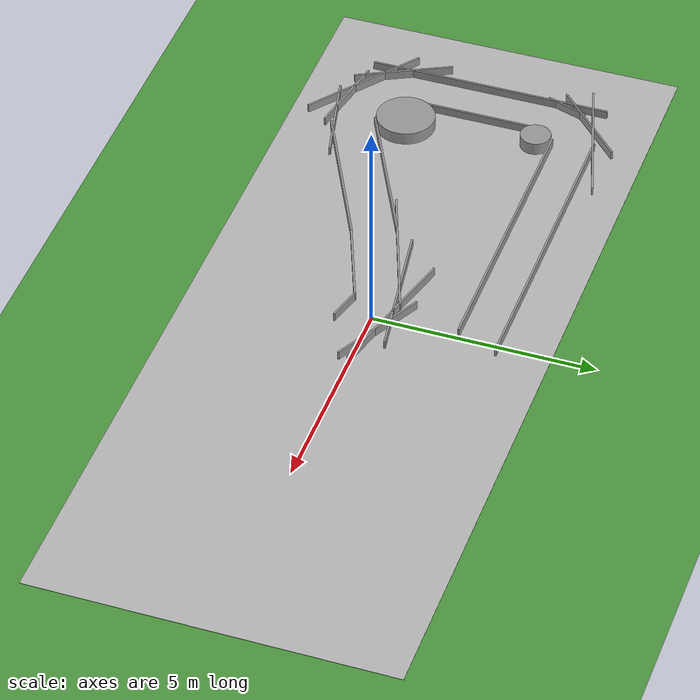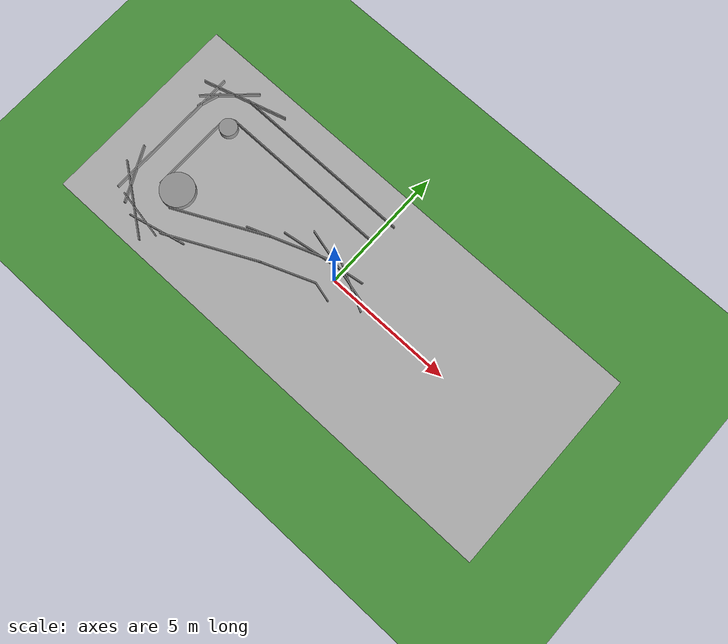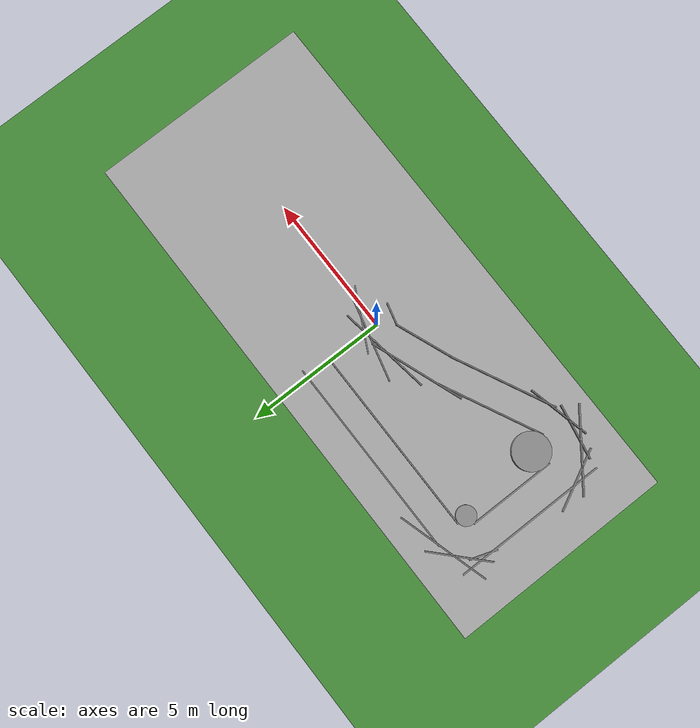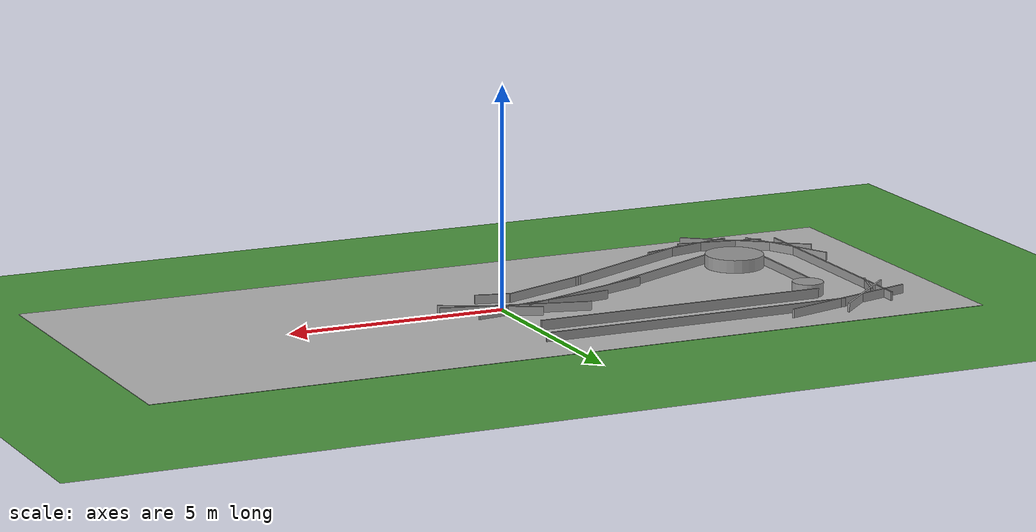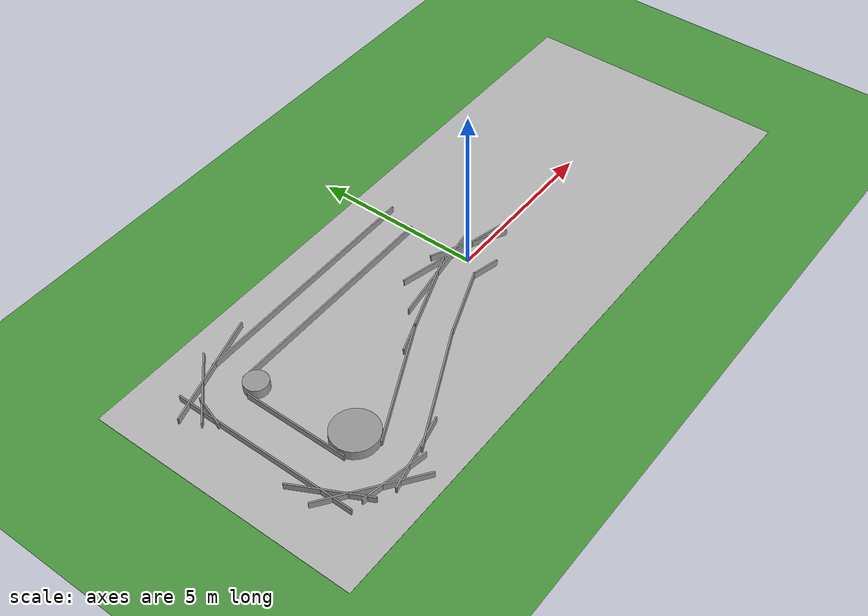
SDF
<sdf version="1.5">
 <world name="default">
  <model name="ground_grass">
   <static>1</static>
   <link name="ground_grass">
    <collision name="collision">
     <geometry><plane><normal>0 0 1</normal><size>50 50</size></plane></geometry>
     <surface><friction><ode><mu>100</mu><mu2>50</mu2></ode></friction></surface>
    </collision>
    <visual name="visual_ground">
     <cast_shadows>0</cast_shadows>
     <pose>0 0 0.005 0 -0 0</pose>
     <geometry><plane><normal>0 0 1</normal><size>50 50</size></plane></geometry>
     <material>
      <script>
       <uri>model://ground_grass/materials/scripts</uri>
       <uri>model://ground_grass/materials/textures</uri>
       <name>Floor/Grass</name>
      </script>
     </material>
    </visual>
    <velocity_decay><linear>0</linear><angular>0</angular></velocity_decay>
   </link>
  </model>
  <model name="ucsd_track_v1">
   <static>1</static>
   <link name="link_track">
    <collision name="collision">
     <geometry><plane><normal>0 0 1</normal><size>19.431 8.0264</size></plane></geometry>
     <surface><friction><ode><mu>100</mu><mu2>50</mu2></ode></friction></surface>
    </collision>
    <visual name="visual_ground">
     <cast_shadows>0</cast_shadows>
     <pose>0 0 0.005 0 -0 0</pose>
     <geometry><plane><normal>0 0 1</normal><size>19.431 8.0264</size></plane></geometry>
     <material>
      <script>
       <uri>model://ucsd_track_v1/materials/scripts</uri>
       <uri>model://ucsd_track_v1/materials/textures</uri>
       <name>Floor/Image</name>
      </script>
     </material>
    </visual>
    <velocity_decay><linear>0</linear><angular>0</angular></velocity_decay>
   </link>
   <pose>0 0 0.001 0 -0 0</pose>
  </model>
  <model name="grey_wall_track">
   <link name="link">
    <pose>0 0 1.4 0 -0 0</pose>
    <inertial>
     <inertia><ixx>nan</ixx><ixy>0</ixy><ixz>0</ixz><iyy>nan</iyy><iyz>0</iyz><izz>nan</izz></inertia>
     <mass>0</mass>
    </inertial>
    <visual name="visual">
     <cast_shadows>0</cast_shadows>
     <geometry><box><size>6.7262 0.043266 0.226147</size></box></geometry>
     <material>
      <script>
       <uri>model://grey_wall/materials/scripts</uri>
       <uri>model://grey_wall/materials/textures</uri>
       <name>vrc/grey_wall</name>
      </script>
      <ambient>1 1 1 1</ambient>
      <diffuse>1 1 1 1</diffuse>
      <specular>0 0 0 1</specular>
      <emissive>0 0 0 1</emissive>
     </material>
    </visual>
    <collision name="collision">
     <geometry><box><size>6.7262 0.043266 0.226147</size></box></geometry>
     <surface>
      <friction>
       <ode><mu>1</mu><mu2>1</mu2><fdir1>0 0 0</fdir1><slip1>0</slip1><slip2>0</slip2></ode>
       <torsional>
        <coefficient>1</coefficient>
        <patch_radius>0</patch_radius>
        <surface_radius>0</surface_radius>
        <use_patch_radius>1</use_patch_radius>
        <ode><slip>0</slip></ode>
       </torsional>
      </friction>
      <bounce><restitution_coefficient>0</restitution_coefficient><threshold>1e+06</threshold></bounce>
      <contact>
       <collide_without_contact>0</collide_without_contact>
       <collide_without_contact_bitmask>1</collide_without_contact_bitmask>
       <collide_bitmask>1</collide_bitmask>
       <ode>
        <soft_cfm>0</soft_cfm>
        <soft_erp>0.2</soft_erp>
        <kp>1e+13</kp>
        <kd>1</kd>
        <max_vel>0.01</max_vel>
        <min_depth>0</min_depth>
       </ode>
       <bullet>
        <split_impulse>1</split_impulse>
        <split_impulse_penetration_threshold>-0.01</split_impulse_penetration_threshold>
        <soft_cfm>0</soft_cfm>
        <soft_erp>0.2</soft_erp>
        <kp>1e+13</kp>
        <kd>1</kd>
       </bullet>
      </contact>
     </surface>
    </collision>
   </link>
   <static>1</static>
   <pose>-3.38545 1.93605 -1.28591 0 -0 0</pose>
  </model>
  <model name="grey_wall_small_6">
   <link name="link">
    <pose>0 0 1.4 0 -0 0.009516</pose>
    <inertial>
     <inertia><ixx>nan</ixx><ixy>0</ixy><ixz>0</ixz><iyy>nan</iyy><iyz>0</iyz><izz>nan</izz></inertia>
     <mass>0</mass>
    </inertial>
    <visual name="visual">
     <cast_shadows>0</cast_shadows>
     <geometry><box><size>3.14897 0.043266 0.226147</size></box></geometry>
     <material>
      <script>
       <uri>model://grey_wall/materials/scripts</uri>
       <uri>model://grey_wall/materials/textures</uri>
       <name>vrc/grey_wall</name>
      </script>
      <ambient>1 1 1 1</ambient>
      <diffuse>1 1 1 1</diffuse>
      <specular>0 0 0 1</specular>
      <emissive>0 0 0 1</emissive>
     </material>
    </visual>
    <collision name="collision">
     <geometry><box><size>3.14897 0.043266 0.226147</size></box></geometry>
     <surface>
      <friction>
       <ode><mu>1</mu><mu2>1</mu2><fdir1>0 0 0</fdir1><slip1>0</slip1><slip2>0</slip2></ode>
       <torsional>
        <coefficient>1</coefficient>
        <patch_radius>0</patch_radius>
        <surface_radius>0</surface_radius>
        <use_patch_radius>1</use_patch_radius>
        <ode><slip>0</slip></ode>
       </torsional>
      </friction>
      <bounce><restitution_coefficient>0</restitution_coefficient><threshold>1e+06</threshold></bounce>
      <contact>
       <collide_without_contact>0</collide_without_contact>
       <collide_without_contact_bitmask>1</collide_without_contact_bitmask>
       <collide_bitmask>1</collide_bitmask>
       <ode>
        <soft_cfm>0</soft_cfm>
        <soft_erp>0.2</soft_erp>
        <kp>1e+13</kp>
        <kd>1</kd>
        <max_vel>0.01</max_vel>
        <min_depth>0</min_depth>
       </ode>
       <bullet>
        <split_impulse>1</split_impulse>
        <split_impulse_penetration_threshold>-0.01</split_impulse_penetration_threshold>
        <soft_cfm>0</soft_cfm>
        <soft_erp>0.2</soft_erp>
        <kp>1e+13</kp>
        <kd>1</kd>
       </bullet>
      </contact>
     </surface>
    </collision>
   </link>
   <static>1</static>
   <pose>-7.05702 -0.045658 -1.30963 0 -0 1.55954</pose>
  </model>
  <model name="unit_cylinder2_1">
   <link name="link">
    <inertial>
     <mass>0.30371</mass>
     <inertia>
      <ixx>0.0213162</ixx>
      <ixy>0</ixy>
      <ixz>0</ixz>
      <iyy>0.0213162</iyy>
      <iyz>0</iyz>
      <izz>0.0379638</izz>
     </inertia>
    </inertial>
    <visual name="visual">
     <geometry><cylinder><radius>0.348419</radius><length>0.303709</length></cylinder></geometry>
     <material>
      <script><name>Gazebo/Grey</name><uri>file://media/materials/scripts/gazebo.material</uri></script>
      <ambient>0.3 0.3 0.3 1</ambient>
      <diffuse>0.7 0.7 0.7 1</diffuse>
      <specular>0.01 0.01 0.01 1</specular>
      <emissive>0 0 0 1</emissive>
     </material>
    </visual>
    <collision name="collision">
     <geometry><cylinder><radius>0.348419</radius><length>0.303709</length></cylinder></geometry>
     <surface>
      <friction>
       <ode><mu>1</mu><mu2>1</mu2><fdir1>0 0 0</fdir1><slip1>0</slip1><slip2>0</slip2></ode>
       <torsional>
        <coefficient>1</coefficient>
        <patch_radius>0</patch_radius>
        <surface_radius>0</surface_radius>
        <use_patch_radius>1</use_patch_radius>
        <ode><slip>0</slip></ode>
       </torsional>
      </friction>
      <bounce><restitution_coefficient>0</restitution_coefficient><threshold>1e+06</threshold></bounce>
      <contact>
       <collide_without_contact>0</collide_without_contact>
       <collide_without_contact_bitmask>1</collide_without_contact_bitmask>
       <collide_bitmask>1</collide_bitmask>
       <ode>
        <soft_cfm>0</soft_cfm>
        <soft_erp>0.2</soft_erp>
        <kp>1e+13</kp>
        <kd>1</kd>
        <max_vel>0.01</max_vel>
        <min_depth>0</min_depth>
       </ode>
       <bullet>
        <split_impulse>1</split_impulse>
        <split_impulse_penetration_threshold>-0.01</split_impulse_penetration_threshold>
        <soft_cfm>0</soft_cfm>
        <soft_erp>0.2</soft_erp>
        <kp>1e+13</kp>
        <kd>1</kd>
       </bullet>
      </contact>
     </surface>
    </collision>
   </link>
   <static>0</static>
   <pose>-6.68593 1.56597 0.152845 0 -0 0.015083</pose>
  </model>
  <model name="grey_wall_twisted_r_1_2">
   <link name="link">
    <pose>0 0 1.4 0 0 -0.470145</pose>
    <inertial>
     <inertia><ixx>nan</ixx><ixy>0</ixy><ixz>0</ixz><iyy>nan</iyy><iyz>0</iyz><izz>nan</izz></inertia>
     <mass>0</mass>
    </inertial>
    <visual name="visual">
     <cast_shadows>0</cast_shadows>
     <geometry><box><size>2.31434 0.043266 0.226147</size></box></geometry>
     <material>
      <script>
       <uri>model://grey_wall/materials/scripts</uri>
       <uri>model://grey_wall/materials/textures</uri>
       <name>vrc/grey_wall</name>
      </script>
      <ambient>1 1 1 1</ambient>
      <diffuse>1 1 1 1</diffuse>
      <specular>0 0 0 1</specular>
      <emissive>0 0 0 1</emissive>
     </material>
    </visual>
    <collision name="collision">
     <geometry><box><size>2.31434 0.043266 0.226147</size></box></geometry>
     <surface>
      <friction>
       <ode><mu>1</mu><mu2>1</mu2><fdir1>0 0 0</fdir1><slip1>0</slip1><slip2>0</slip2></ode>
       <torsional>
        <coefficient>1</coefficient>
        <patch_radius>0</patch_radius>
        <surface_radius>0</surface_radius>
        <use_patch_radius>1</use_patch_radius>
        <ode><slip>0</slip></ode>
       </torsional>
      </friction>
      <bounce><restitution_coefficient>0</restitution_coefficient><threshold>1e+06</threshold></bounce>
      <contact>
       <collide_without_contact>0</collide_without_contact>
       <collide_without_contact_bitmask>1</collide_without_contact_bitmask>
       <collide_bitmask>1</collide_bitmask>
       <ode>
        <soft_cfm>0</soft_cfm>
        <soft_erp>0.2</soft_erp>
        <kp>1e+13</kp>
        <kd>1</kd>
        <max_vel>0.01</max_vel>
        <min_depth>0</min_depth>
       </ode>
       <bullet>
        <split_impulse>1</split_impulse>
        <split_impulse_penetration_threshold>-0.01</split_impulse_penetration_threshold>
        <soft_cfm>0</soft_cfm>
        <soft_erp>0.2</soft_erp>
        <kp>1e+13</kp>
        <kd>1</kd>
       </bullet>
      </contact>
     </surface>
    </collision>
   </link>
   <static>1</static>
   <pose>0.423351 0.292484 -1.30552 0 -0 0</pose>
  </model>
  <model name="grey_wall_twisted_as">
   <link name="link">
    <pose>0 0 1.4 0 -0 0.150162</pose>
    <inertial>
     <inertia><ixx>nan</ixx><ixy>0</ixy><ixz>0</ixz><iyy>nan</iyy><iyz>0</iyz><izz>nan</izz></inertia>
     <mass>0</mass>
    </inertial>
    <visual name="visual">
     <cast_shadows>0</cast_shadows>
     <geometry><box><size>3.35542 0.043266 0.226147</size></box></geometry>
     <material>
      <script>
       <uri>model://grey_wall/materials/scripts</uri>
       <uri>model://grey_wall/materials/textures</uri>
       <name>vrc/grey_wall</name>
      </script>
      <ambient>1 1 1 1</ambient>
      <diffuse>1 1 1 1</diffuse>
      <specular>0 0 0 1</specular>
      <emissive>0 0 0 1</emissive>
     </material>
    </visual>
    <collision name="collision">
     <geometry><box><size>3.35542 0.043266 0.226147</size></box></geometry>
     <surface>
      <friction>
       <ode><mu>1</mu><mu2>1</mu2><fdir1>0 0 0</fdir1><slip1>0</slip1><slip2>0</slip2></ode>
       <torsional>
        <coefficient>1</coefficient>
        <patch_radius>0</patch_radius>
        <surface_radius>0</surface_radius>
        <use_patch_radius>1</use_patch_radius>
        <ode><slip>0</slip></ode>
       </torsional>
      </friction>
      <bounce><restitution_coefficient>0</restitution_coefficient><threshold>1e+06</threshold></bounce>
      <contact>
       <collide_without_contact>0</collide_without_contact>
       <collide_without_contact_bitmask>1</collide_without_contact_bitmask>
       <collide_bitmask>1</collide_bitmask>
       <ode>
        <soft_cfm>0</soft_cfm>
        <soft_erp>0.2</soft_erp>
        <kp>1e+13</kp>
        <kd>1</kd>
        <max_vel>0.01</max_vel>
        <min_depth>0</min_depth>
       </ode>
       <bullet>
        <split_impulse>1</split_impulse>
        <split_impulse_penetration_threshold>-0.01</split_impulse_penetration_threshold>
        <soft_cfm>0</soft_cfm>
        <soft_erp>0.2</soft_erp>
        <kp>1e+13</kp>
        <kd>1</kd>
       </bullet>
      </contact>
     </surface>
    </collision>
   </link>
   <static>1</static>
   <pose>-0.840468 0.32663 -1.30539 0 -0 0</pose>
  </model>
  <model name="grey_wall_twisted_3_cc">
   <link name="link">
    <pose>0 0 1.4 0 -0 0.351301</pose>
    <inertial>
     <inertia><ixx>nan</ixx><ixy>0</ixy><ixz>0</ixz><iyy>nan</iyy><iyz>0</iyz><izz>nan</izz></inertia>
     <mass>0</mass>
    </inertial>
    <visual name="visual">
     <cast_shadows>0</cast_shadows>
     <geometry><box><size>3.45281 0.043266 0.226147</size></box></geometry>
     <material>
      <script>
       <uri>model://grey_wall/materials/scripts</uri>
       <uri>model://grey_wall/materials/textures</uri>
       <name>vrc/grey_wall</name>
      </script>
      <ambient>1 1 1 1</ambient>
      <diffuse>1 1 1 1</diffuse>
      <specular>0 0 0 1</specular>
      <emissive>0 0 0 1</emissive>
     </material>
    </visual>
    <collision name="collision">
     <geometry><box><size>3.45281 0.043266 0.226147</size></box></geometry>
     <surface>
      <friction>
       <ode><mu>1</mu><mu2>1</mu2><fdir1>0 0 0</fdir1><slip1>0</slip1><slip2>0</slip2></ode>
       <torsional>
        <coefficient>1</coefficient>
        <patch_radius>0</patch_radius>
        <surface_radius>0</surface_radius>
        <use_patch_radius>1</use_patch_radius>
        <ode><slip>0</slip></ode>
       </torsional>
      </friction>
      <bounce><restitution_coefficient>0</restitution_coefficient><threshold>1e+06</threshold></bounce>
      <contact>
       <collide_without_contact>0</collide_without_contact>
       <collide_without_contact_bitmask>1</collide_without_contact_bitmask>
       <collide_bitmask>1</collide_bitmask>
       <ode>
        <soft_cfm>0</soft_cfm>
        <soft_erp>0.2</soft_erp>
        <kp>1e+13</kp>
        <kd>1</kd>
        <max_vel>0.01</max_vel>
        <min_depth>0</min_depth>
       </ode>
       <bullet>
        <split_impulse>1</split_impulse>
        <split_impulse_penetration_threshold>-0.01</split_impulse_penetration_threshold>
        <soft_cfm>0</soft_cfm>
        <soft_erp>0.2</soft_erp>
        <kp>1e+13</kp>
        <kd>1</kd>
       </bullet>
      </contact>
     </surface>
    </collision>
   </link>
   <static>1</static>
   <pose>-2.03101 -0.087839 -1.30331 0 -0 0</pose>
  </model>
  <model name="grey_wall_twisted_tf">
   <link name="link">
    <pose>0 0 1.4 0 -0 0.455224</pose>
    <inertial>
     <inertia><ixx>nan</ixx><ixy>0</ixy><ixz>0</ixz><iyy>nan</iyy><iyz>0</iyz><izz>nan</izz></inertia>
     <mass>0</mass>
    </inertial>
    <visual name="visual">
     <cast_shadows>0</cast_shadows>
     <geometry><box><size>3.81606 0.043266 0.226147</size></box></geometry>
     <material>
      <script>
       <uri>model://grey_wall/materials/scripts</uri>
       <uri>model://grey_wall/materials/textures</uri>
       <name>vrc/grey_wall</name>
      </script>
      <ambient>1 1 1 1</ambient>
      <diffuse>1 1 1 1</diffuse>
      <specular>0 0 0 1</specular>
      <emissive>0 0 0 1</emissive>
     </material>
    </visual>
    <collision name="collision">
     <geometry><box><size>3.81606 0.043266 0.226147</size></box></geometry>
     <surface>
      <friction>
       <ode><mu>1</mu><mu2>1</mu2><fdir1>0 0 0</fdir1><slip1>0</slip1><slip2>0</slip2></ode>
       <torsional>
        <coefficient>1</coefficient>
        <patch_radius>0</patch_radius>
        <surface_radius>0</surface_radius>
        <use_patch_radius>1</use_patch_radius>
        <ode><slip>0</slip></ode>
       </torsional>
      </friction>
      <bounce><restitution_coefficient>0</restitution_coefficient><threshold>1e+06</threshold></bounce>
      <contact>
       <collide_without_contact>0</collide_without_contact>
       <collide_without_contact_bitmask>1</collide_without_contact_bitmask>
       <collide_bitmask>1</collide_bitmask>
       <ode>
        <soft_cfm>0</soft_cfm>
        <soft_erp>0.2</soft_erp>
        <kp>1e+13</kp>
        <kd>1</kd>
        <max_vel>0.01</max_vel>
        <min_depth>0</min_depth>
       </ode>
       <bullet>
        <split_impulse>1</split_impulse>
        <split_impulse_penetration_threshold>-0.01</split_impulse_penetration_threshold>
        <soft_cfm>0</soft_cfm>
        <soft_erp>0.2</soft_erp>
        <kp>1e+13</kp>
        <kd>1</kd>
       </bullet>
      </contact>
     </surface>
    </collision>
   </link>
   <static>1</static>
   <pose>-4.49945 -1.20909 -1.30331 0 -0 0</pose>
  </model>
  <model name="grey_wall_twisted_as_fillin">
   <link name="link">
    <pose>0 0 1.4 0 0 -0.249614</pose>
    <inertial>
     <inertia><ixx>nan</ixx><ixy>0</ixy><ixz>0</ixz><iyy>nan</iyy><iyz>0</iyz><izz>nan</izz></inertia>
     <mass>0</mass>
    </inertial>
    <visual name="visual">
     <cast_shadows>0</cast_shadows>
     <geometry><box><size>3.35542 0.043266 0.226147</size></box></geometry>
     <material>
      <script>
       <uri>model://grey_wall/materials/scripts</uri>
       <uri>model://grey_wall/materials/textures</uri>
       <name>vrc/grey_wall</name>
      </script>
      <ambient>1 1 1 1</ambient>
      <diffuse>1 1 1 1</diffuse>
      <specular>0 0 0 1</specular>
      <emissive>0 0 0 1</emissive>
     </material>
    </visual>
    <collision name="collision">
     <geometry><box><size>3.35542 0.043266 0.226147</size></box></geometry>
     <surface>
      <friction>
       <ode><mu>1</mu><mu2>1</mu2><fdir1>0 0 0</fdir1><slip1>0</slip1><slip2>0</slip2></ode>
       <torsional>
        <coefficient>1</coefficient>
        <patch_radius>0</patch_radius>
        <surface_radius>0</surface_radius>
        <use_patch_radius>1</use_patch_radius>
        <ode><slip>0</slip></ode>
       </torsional>
      </friction>
      <bounce><restitution_coefficient>0</restitution_coefficient><threshold>1e+06</threshold></bounce>
      <contact>
       <collide_without_contact>0</collide_without_contact>
       <collide_without_contact_bitmask>1</collide_without_contact_bitmask>
       <collide_bitmask>1</collide_bitmask>
       <ode>
        <soft_cfm>0</soft_cfm>
        <soft_erp>0.2</soft_erp>
        <kp>1e+13</kp>
        <kd>1</kd>
        <max_vel>0.01</max_vel>
        <min_depth>0</min_depth>
       </ode>
       <bullet>
        <split_impulse>1</split_impulse>
        <split_impulse_penetration_threshold>-0.01</split_impulse_penetration_threshold>
        <soft_cfm>0</soft_cfm>
        <soft_erp>0.2</soft_erp>
        <kp>1e+13</kp>
        <kd>1</kd>
       </bullet>
      </contact>
     </surface>
    </collision>
   </link>
   <static>1</static>
   <pose>-0.129806 0.410559 -1.30539 0 -0 0</pose>
  </model>
  <model name="grey_wall_twisted_tf_clone">
   <link name="link">
    <pose>0 0 1.4 0 -0 0.455224</pose>
    <inertial>
     <inertia><ixx>nan</ixx><ixy>0</ixy><ixz>0</ixz><iyy>nan</iyy><iyz>0</iyz><izz>nan</izz></inertia>
     <mass>0</mass>
    </inertial>
    <visual name="visual">
     <cast_shadows>0</cast_shadows>
     <geometry><box><size>3.81606 0.043266 0.226147</size></box></geometry>
     <material>
      <script>
       <uri>model://grey_wall/materials/scripts</uri>
       <uri>model://grey_wall/materials/textures</uri>
       <name>vrc/grey_wall</name>
      </script>
      <ambient>1 1 1 1</ambient>
      <diffuse>1 1 1 1</diffuse>
      <specular>0 0 0 1</specular>
      <emissive>0 0 0 1</emissive>
     </material>
    </visual>
    <collision name="collision">
     <geometry><box><size>3.81606 0.043266 0.226147</size></box></geometry>
     <surface>
      <friction>
       <ode><mu>1</mu><mu2>1</mu2><fdir1>0 0 0</fdir1><slip1>0</slip1><slip2>0</slip2></ode>
       <torsional>
        <coefficient>1</coefficient>
        <patch_radius>0</patch_radius>
        <surface_radius>0</surface_radius>
        <use_patch_radius>1</use_patch_radius>
        <ode><slip>0</slip></ode>
       </torsional>
      </friction>
      <bounce><restitution_coefficient>0</restitution_coefficient><threshold>1e+06</threshold></bounce>
      <contact>
       <collide_without_contact>0</collide_without_contact>
       <collide_without_contact_bitmask>1</collide_without_contact_bitmask>
       <collide_bitmask>1</collide_bitmask>
       <ode>
        <soft_cfm>0</soft_cfm>
        <soft_erp>0.2</soft_erp>
        <kp>1e+13</kp>
        <kd>1</kd>
        <max_vel>0.01</max_vel>
        <min_depth>0</min_depth>
       </ode>
       <bullet>
        <split_impulse>1</split_impulse>
        <split_impulse_penetration_threshold>-0.01</split_impulse_penetration_threshold>
        <soft_cfm>0</soft_cfm>
        <soft_erp>0.2</soft_erp>
        <kp>1e+13</kp>
        <kd>1</kd>
       </bullet>
      </contact>
     </surface>
    </collision>
   </link>
   <static>1</static>
   <pose>-4.07016 -2.10177 -1.30331 0 -0 0</pose>
  </model>
  <model name="grey_wall_twisted_sm">
   <link name="link">
    <pose>0 0 1.4 0 0 -0.249614</pose>
    <inertial>
     <inertia><ixx>nan</ixx><ixy>0</ixy><ixz>0</ixz><iyy>nan</iyy><iyz>0</iyz><izz>nan</izz></inertia>
     <mass>0</mass>
    </inertial>
    <visual name="visual">
     <cast_shadows>0</cast_shadows>
     <geometry><box><size>0.794827 0.043266 0.226147</size></box></geometry>
     <material>
      <script>
       <uri>model://grey_wall/materials/scripts</uri>
       <uri>model://grey_wall/materials/textures</uri>
       <name>vrc/grey_wall</name>
      </script>
      <ambient>1 1 1 1</ambient>
      <diffuse>1 1 1 1</diffuse>
      <specular>0 0 0 1</specular>
      <emissive>0 0 0 1</emissive>
     </material>
    </visual>
    <collision name="collision">
     <geometry><box><size>0.794827 0.043266 0.226147</size></box></geometry>
     <surface>
      <friction>
       <ode><mu>1</mu><mu2>1</mu2><fdir1>0 0 0</fdir1><slip1>0</slip1><slip2>0</slip2></ode>
       <torsional>
        <coefficient>1</coefficient>
        <patch_radius>0</patch_radius>
        <surface_radius>0</surface_radius>
        <use_patch_radius>1</use_patch_radius>
        <ode><slip>0</slip></ode>
       </torsional>
      </friction>
      <bounce><restitution_coefficient>0</restitution_coefficient><threshold>1e+06</threshold></bounce>
      <contact>
       <collide_without_contact>0</collide_without_contact>
       <collide_without_contact_bitmask>1</collide_without_contact_bitmask>
       <collide_bitmask>1</collide_bitmask>
       <ode>
        <soft_cfm>0</soft_cfm>
        <soft_erp>0.2</soft_erp>
        <kp>1e+13</kp>
        <kd>1</kd>
        <max_vel>0.01</max_vel>
        <min_depth>0</min_depth>
       </ode>
       <bullet>
        <split_impulse>1</split_impulse>
        <split_impulse_penetration_threshold>-0.01</split_impulse_penetration_threshold>
        <soft_cfm>0</soft_cfm>
        <soft_erp>0.2</soft_erp>
        <kp>1e+13</kp>
        <kd>1</kd>
       </bullet>
      </contact>
     </surface>
    </collision>
   </link>
   <static>1</static>
   <pose>-0.042418 -0.617739 -1.30539 0 -0 0</pose>
  </model>
  <model name="grey_wall_twisted_ll_5">
   <link name="link">
    <pose>0 0 1.4 0 -0 0.372344</pose>
    <inertial>
     <inertia><ixx>nan</ixx><ixy>0</ixy><ixz>0</ixz><iyy>nan</iyy><iyz>0</iyz><izz>nan</izz></inertia>
     <mass>0</mass>
    </inertial>
    <visual name="visual">
     <cast_shadows>0</cast_shadows>
     <geometry><box><size>2.25374 0.043266 0.226147</size></box></geometry>
     <material>
      <script>
       <uri>model://grey_wall/materials/scripts</uri>
       <uri>model://grey_wall/materials/textures</uri>
       <name>vrc/grey_wall</name>
      </script>
      <ambient>1 1 1 1</ambient>
      <diffuse>1 1 1 1</diffuse>
      <specular>0 0 0 1</specular>
      <emissive>0 0 0 1</emissive>
     </material>
    </visual>
    <collision name="collision">
     <geometry><box><size>2.25374 0.043266 0.226147</size></box></geometry>
     <surface>
      <friction>
       <ode><mu>1</mu><mu2>1</mu2><fdir1>0 0 0</fdir1><slip1>0</slip1><slip2>0</slip2></ode>
       <torsional>
        <coefficient>1</coefficient>
        <patch_radius>0</patch_radius>
        <surface_radius>0</surface_radius>
        <use_patch_radius>1</use_patch_radius>
        <ode><slip>0</slip></ode>
       </torsional>
      </friction>
      <bounce><restitution_coefficient>0</restitution_coefficient><threshold>1e+06</threshold></bounce>
      <contact>
       <collide_without_contact>0</collide_without_contact>
       <collide_without_contact_bitmask>1</collide_without_contact_bitmask>
       <collide_bitmask>1</collide_bitmask>
       <ode>
        <soft_cfm>0</soft_cfm>
        <soft_erp>0.2</soft_erp>
        <kp>1e+13</kp>
        <kd>1</kd>
        <max_vel>0.01</max_vel>
        <min_depth>0</min_depth>
       </ode>
       <bullet>
        <split_impulse>1</split_impulse>
        <split_impulse_penetration_threshold>-0.01</split_impulse_penetration_threshold>
        <soft_cfm>0</soft_cfm>
        <soft_erp>0.2</soft_erp>
        <kp>1e+13</kp>
        <kd>1</kd>
       </bullet>
      </contact>
     </surface>
    </collision>
   </link>
   <static>1</static>
   <pose>-1.45423 -0.91787 -1.30539 0 -0 0</pose>
  </model>
  <model name="grey_wall_twisted_ab_0">
   <link name="link">
    <pose>0 0 1.4 0 -0 0.754598</pose>
    <inertial>
     <inertia><ixx>nan</ixx><ixy>0</ixy><ixz>0</ixz><iyy>nan</iyy><iyz>0</iyz><izz>nan</izz></inertia>
     <mass>0</mass>
    </inertial>
    <visual name="visual">
     <cast_shadows>0</cast_shadows>
     <geometry><box><size>2.25374 0.043266 0.226147</size></box></geometry>
     <material>
      <script>
       <uri>model://grey_wall/materials/scripts</uri>
       <uri>model://grey_wall/materials/textures</uri>
       <name>vrc/grey_wall</name>
      </script>
      <ambient>1 1 1 1</ambient>
      <diffuse>1 1 1 1</diffuse>
      <specular>0 0 0 1</specular>
      <emissive>0 0 0 1</emissive>
     </material>
    </visual>
    <collision name="collision">
     <geometry><box><size>2.25374 0.043266 0.226147</size></box></geometry>
     <surface>
      <friction>
       <ode><mu>1</mu><mu2>1</mu2><fdir1>0 0 0</fdir1><slip1>0</slip1><slip2>0</slip2></ode>
       <torsional>
        <coefficient>1</coefficient>
        <patch_radius>0</patch_radius>
        <surface_radius>0</surface_radius>
        <use_patch_radius>1</use_patch_radius>
        <ode><slip>0</slip></ode>
       </torsional>
      </friction>
      <bounce><restitution_coefficient>0</restitution_coefficient><threshold>1e+06</threshold></bounce>
      <contact>
       <collide_without_contact>0</collide_without_contact>
       <collide_without_contact_bitmask>1</collide_without_contact_bitmask>
       <collide_bitmask>1</collide_bitmask>
       <ode>
        <soft_cfm>0</soft_cfm>
        <soft_erp>0.2</soft_erp>
        <kp>1e+13</kp>
        <kd>1</kd>
        <max_vel>0.01</max_vel>
        <min_depth>0</min_depth>
       </ode>
       <bullet>
        <split_impulse>1</split_impulse>
        <split_impulse_penetration_threshold>-0.01</split_impulse_penetration_threshold>
        <soft_cfm>0</soft_cfm>
        <soft_erp>0.2</soft_erp>
        <kp>1e+13</kp>
        <kd>1</kd>
       </bullet>
      </contact>
     </surface>
    </collision>
   </link>
   <static>1</static>
   <pose>-7.5792 2.54628 -1.30539 0 -0 0</pose>
  </model>
  <model name="grey_wall_twisted_ba">
   <link name="link">
    <pose>0 0 1.4 0 -0 0.28344</pose>
    <inertial>
     <inertia><ixx>nan</ixx><ixy>0</ixy><ixz>0</ixz><iyy>nan</iyy><iyz>0</iyz><izz>nan</izz></inertia>
     <mass>0</mass>
    </inertial>
    <visual name="visual">
     <cast_shadows>0</cast_shadows>
     <geometry><box><size>3.35542 0.043266 0.226147</size></box></geometry>
     <material>
      <script>
       <uri>model://grey_wall/materials/scripts</uri>
       <uri>model://grey_wall/materials/textures</uri>
       <name>vrc/grey_wall</name>
      </script>
      <ambient>1 1 1 1</ambient>
      <diffuse>1 1 1 1</diffuse>
      <specular>0 0 0 1</specular>
      <emissive>0 0 0 1</emissive>
     </material>
    </visual>
    <collision name="collision">
     <geometry><box><size>3.35542 0.043266 0.226147</size></box></geometry>
     <surface>
      <friction>
       <ode><mu>1</mu><mu2>1</mu2><fdir1>0 0 0</fdir1><slip1>0</slip1><slip2>0</slip2></ode>
       <torsional>
        <coefficient>1</coefficient>
        <patch_radius>0</patch_radius>
        <surface_radius>0</surface_radius>
        <use_patch_radius>1</use_patch_radius>
        <ode><slip>0</slip></ode>
       </torsional>
      </friction>
      <bounce><restitution_coefficient>0</restitution_coefficient><threshold>1e+06</threshold></bounce>
      <contact>
       <collide_without_contact>0</collide_without_contact>
       <collide_without_contact_bitmask>1</collide_without_contact_bitmask>
       <collide_bitmask>1</collide_bitmask>
       <ode>
        <soft_cfm>0</soft_cfm>
        <soft_erp>0.2</soft_erp>
        <kp>1e+13</kp>
        <kd>1</kd>
        <max_vel>0.01</max_vel>
        <min_depth>0</min_depth>
       </ode>
       <bullet>
        <split_impulse>1</split_impulse>
        <split_impulse_penetration_threshold>-0.01</split_impulse_penetration_threshold>
        <soft_cfm>0</soft_cfm>
        <soft_erp>0.2</soft_erp>
        <kp>1e+13</kp>
        <kd>1</kd>
       </bullet>
      </contact>
     </surface>
    </collision>
   </link>
   <static>1</static>
   <pose>-7.03961 2.79261 -1.30539 0 -0 0</pose>
  </model>
  <model name="grey_wall_track_3_aa">
   <link name="link">
    <pose>0 0 1.4 0 -0 0</pose>
    <inertial>
     <inertia><ixx>nan</ixx><ixy>0</ixy><ixz>0</ixz><iyy>nan</iyy><iyz>0</iyz><izz>nan</izz></inertia>
     <mass>0</mass>
    </inertial>
    <visual name="visual">
     <cast_shadows>0</cast_shadows>
     <geometry><box><size>7.20978 0.043266 0.226147</size></box></geometry>
     <material>
      <script>
       <uri>model://grey_wall/materials/scripts</uri>
       <uri>model://grey_wall/materials/textures</uri>
       <name>vrc/grey_wall</name>
      </script>
      <ambient>1 1 1 1</ambient>
      <diffuse>1 1 1 1</diffuse>
      <specular>0 0 0 1</specular>
      <emissive>0 0 0 1</emissive>
     </material>
    </visual>
    <collision name="collision">
     <geometry><box><size>7.20978 0.043266 0.226147</size></box></geometry>
     <surface>
      <friction>
       <ode><mu>1</mu><mu2>1</mu2><fdir1>0 0 0</fdir1><slip1>0</slip1><slip2>0</slip2></ode>
       <torsional>
        <coefficient>1</coefficient>
        <patch_radius>0</patch_radius>
        <surface_radius>0</surface_radius>
        <use_patch_radius>1</use_patch_radius>
        <ode><slip>0</slip></ode>
       </torsional>
      </friction>
      <bounce><restitution_coefficient>0</restitution_coefficient><threshold>1e+06</threshold></bounce>
      <contact>
       <collide_without_contact>0</collide_without_contact>
       <collide_without_contact_bitmask>1</collide_without_contact_bitmask>
       <collide_bitmask>1</collide_bitmask>
       <ode>
        <soft_cfm>0</soft_cfm>
        <soft_erp>0.2</soft_erp>
        <kp>1e+13</kp>
        <kd>1</kd>
        <max_vel>0.01</max_vel>
        <min_depth>0</min_depth>
       </ode>
       <bullet>
        <split_impulse>1</split_impulse>
        <split_impulse_penetration_threshold>-0.01</split_impulse_penetration_threshold>
        <soft_cfm>0</soft_cfm>
        <soft_erp>0.2</soft_erp>
        <kp>1e+13</kp>
        <kd>1</kd>
       </bullet>
      </contact>
     </surface>
    </collision>
   </link>
   <static>1</static>
   <pose>-3.31818 2.85803 -1.30759 0 -0 0</pose>
  </model>
  <model name="grey_wall_small_a_0">
   <link name="link">
    <pose>0 0 1.4 0 0 -0.308677</pose>
    <inertial>
     <inertia><ixx>nan</ixx><ixy>0</ixy><ixz>0</ixz><iyy>nan</iyy><iyz>0</iyz><izz>nan</izz></inertia>
     <mass>0</mass>
    </inertial>
    <visual name="visual">
     <cast_shadows>0</cast_shadows>
     <geometry><box><size>0.983638 0.043266 0.226147</size></box></geometry>
     <material>
      <script>
       <uri>model://grey_wall/materials/scripts</uri>
       <uri>model://grey_wall/materials/textures</uri>
       <name>vrc/grey_wall</name>
      </script>
      <ambient>1 1 1 1</ambient>
      <diffuse>1 1 1 1</diffuse>
      <specular>0 0 0 1</specular>
      <emissive>0 0 0 1</emissive>
     </material>
    </visual>
    <collision name="collision">
     <geometry><box><size>0.983638 0.043266 0.226147</size></box></geometry>
     <surface>
      <friction>
       <ode><mu>1</mu><mu2>1</mu2><fdir1>0 0 0</fdir1><slip1>0</slip1><slip2>0</slip2></ode>
       <torsional>
        <coefficient>1</coefficient>
        <patch_radius>0</patch_radius>
        <surface_radius>0</surface_radius>
        <use_patch_radius>1</use_patch_radius>
        <ode><slip>0</slip></ode>
       </torsional>
      </friction>
      <bounce><restitution_coefficient>0</restitution_coefficient><threshold>1e+06</threshold></bounce>
      <contact>
       <collide_without_contact>0</collide_without_contact>
       <collide_without_contact_bitmask>1</collide_without_contact_bitmask>
       <collide_bitmask>1</collide_bitmask>
       <ode>
        <soft_cfm>0</soft_cfm>
        <soft_erp>0.2</soft_erp>
        <kp>1e+13</kp>
        <kd>1</kd>
        <max_vel>0.01</max_vel>
        <min_depth>0</min_depth>
       </ode>
       <bullet>
        <split_impulse>1</split_impulse>
        <split_impulse_penetration_threshold>-0.01</split_impulse_penetration_threshold>
        <soft_cfm>0</soft_cfm>
        <soft_erp>0.2</soft_erp>
        <kp>1e+13</kp>
        <kd>1</kd>
       </bullet>
      </contact>
     </surface>
    </collision>
   </link>
   <static>1</static>
   <pose>-8.0118 1.89691 -1.30963 0 -0 1.55954</pose>
  </model>
  <model name="grey_wall_twisted_xx_0">
   <link name="link">
    <pose>0 0 1.4 0 -0 2.03722</pose>
    <inertial>
     <inertia><ixx>nan</ixx><ixy>0</ixy><ixz>0</ixz><iyy>nan</iyy><iyz>0</iyz><izz>nan</izz></inertia>
     <mass>0</mass>
    </inertial>
    <visual name="visual">
     <cast_shadows>0</cast_shadows>
     <geometry><box><size>2.25374 0.043266 0.226147</size></box></geometry>
     <material>
      <script>
       <uri>model://grey_wall/materials/scripts</uri>
       <uri>model://grey_wall/materials/textures</uri>
       <name>vrc/grey_wall</name>
      </script>
      <ambient>1 1 1 1</ambient>
      <diffuse>1 1 1 1</diffuse>
      <specular>0 0 0 1</specular>
      <emissive>0 0 0 1</emissive>
     </material>
    </visual>
    <collision name="collision">
     <geometry><box><size>2.25374 0.043266 0.226147</size></box></geometry>
     <surface>
      <friction>
       <ode><mu>1</mu><mu2>1</mu2><fdir1>0 0 0</fdir1><slip1>0</slip1><slip2>0</slip2></ode>
       <torsional>
        <coefficient>1</coefficient>
        <patch_radius>0</patch_radius>
        <surface_radius>0</surface_radius>
        <use_patch_radius>1</use_patch_radius>
        <ode><slip>0</slip></ode>
       </torsional>
      </friction>
      <bounce><restitution_coefficient>0</restitution_coefficient><threshold>1e+06</threshold></bounce>
      <contact>
       <collide_without_contact>0</collide_without_contact>
       <collide_without_contact_bitmask>1</collide_without_contact_bitmask>
       <collide_bitmask>1</collide_bitmask>
       <ode>
        <soft_cfm>0</soft_cfm>
        <soft_erp>0.2</soft_erp>
        <kp>1e+13</kp>
        <kd>1</kd>
        <max_vel>0.01</max_vel>
        <min_depth>0</min_depth>
       </ode>
       <bullet>
        <split_impulse>1</split_impulse>
        <split_impulse_penetration_threshold>-0.01</split_impulse_penetration_threshold>
        <soft_cfm>0</soft_cfm>
        <soft_erp>0.2</soft_erp>
        <kp>1e+13</kp>
        <kd>1</kd>
       </bullet>
      </contact>
     </surface>
    </collision>
   </link>
   <static>1</static>
   <pose>-8.01315 -1.98228 -1.30539 0 -0 0</pose>
  </model>
  <model name="grey_wall_small_6_clone_2">
   <link name="link">
    <pose>0 0 1.4 0 -0 0.009516</pose>
    <inertial>
     <inertia><ixx>nan</ixx><ixy>0</ixy><ixz>0</ixz><iyy>nan</iyy><iyz>0</iyz><izz>nan</izz></inertia>
     <mass>0</mass>
    </inertial>
    <visual name="visual">
     <cast_shadows>0</cast_shadows>
     <geometry><box><size>5.54274 0.043266 0.226147</size></box></geometry>
     <material>
      <script>
       <uri>model://grey_wall/materials/scripts</uri>
       <uri>model://grey_wall/materials/textures</uri>
       <name>vrc/grey_wall</name>
      </script>
      <ambient>1 1 1 1</ambient>
      <diffuse>1 1 1 1</diffuse>
      <specular>0 0 0 1</specular>
      <emissive>0 0 0 1</emissive>
     </material>
    </visual>
    <collision name="collision">
     <geometry><box><size>5.54274 0.043266 0.226147</size></box></geometry>
     <surface>
      <friction>
       <ode><mu>1</mu><mu2>1</mu2><fdir1>0 0 0</fdir1><slip1>0</slip1><slip2>0</slip2></ode>
       <torsional>
        <coefficient>1</coefficient>
        <patch_radius>0</patch_radius>
        <surface_radius>0</surface_radius>
        <use_patch_radius>1</use_patch_radius>
        <ode><slip>0</slip></ode>
       </torsional>
      </friction>
      <bounce><restitution_coefficient>0</restitution_coefficient><threshold>1e+06</threshold></bounce>
      <contact>
       <collide_without_contact>0</collide_without_contact>
       <collide_without_contact_bitmask>1</collide_without_contact_bitmask>
       <collide_bitmask>1</collide_bitmask>
       <ode>
        <soft_cfm>0</soft_cfm>
        <soft_erp>0.2</soft_erp>
        <kp>1e+13</kp>
        <kd>1</kd>
        <max_vel>0.01</max_vel>
        <min_depth>0</min_depth>
       </ode>
       <bullet>
        <split_impulse>1</split_impulse>
        <split_impulse_penetration_threshold>-0.01</split_impulse_penetration_threshold>
        <soft_cfm>0</soft_cfm>
        <soft_erp>0.2</soft_erp>
        <kp>1e+13</kp>
        <kd>1</kd>
       </bullet>
      </contact>
     </surface>
    </collision>
   </link>
   <static>1</static>
   <pose>-8.11068 0.042246 -1.30963 0 -0 1.55954</pose>
  </model>
  <model name="grey_wall_twisted_bg_0">
   <link name="link">
    <pose>0 0 1.4 0 -0 0.231205</pose>
    <inertial>
     <inertia><ixx>nan</ixx><ixy>0</ixy><ixz>0</ixz><iyy>nan</iyy><iyz>0</iyz><izz>nan</izz></inertia>
     <mass>0</mass>
    </inertial>
    <visual name="visual">
     <cast_shadows>0</cast_shadows>
     <geometry><box><size>2.25374 0.043266 0.226147</size></box></geometry>
     <material>
      <script>
       <uri>model://grey_wall/materials/scripts</uri>
       <uri>model://grey_wall/materials/textures</uri>
       <name>vrc/grey_wall</name>
      </script>
      <ambient>1 1 1 1</ambient>
      <diffuse>1 1 1 1</diffuse>
      <specular>0 0 0 1</specular>
      <emissive>0 0 0 1</emissive>
     </material>
    </visual>
    <collision name="collision">
     <geometry><box><size>2.25374 0.043266 0.226147</size></box></geometry>
     <surface>
      <friction>
       <ode><mu>1</mu><mu2>1</mu2><fdir1>0 0 0</fdir1><slip1>0</slip1><slip2>0</slip2></ode>
       <torsional>
        <coefficient>1</coefficient>
        <patch_radius>0</patch_radius>
        <surface_radius>0</surface_radius>
        <use_patch_radius>1</use_patch_radius>
        <ode><slip>0</slip></ode>
       </torsional>
      </friction>
      <bounce><restitution_coefficient>0</restitution_coefficient><threshold>1e+06</threshold></bounce>
      <contact>
       <collide_without_contact>0</collide_without_contact>
       <collide_without_contact_bitmask>1</collide_without_contact_bitmask>
       <collide_bitmask>1</collide_bitmask>
       <ode>
        <soft_cfm>0</soft_cfm>
        <soft_erp>0.2</soft_erp>
        <kp>1e+13</kp>
        <kd>1</kd>
        <max_vel>0.01</max_vel>
        <min_depth>0</min_depth>
       </ode>
       <bullet>
        <split_impulse>1</split_impulse>
        <split_impulse_penetration_threshold>-0.01</split_impulse_penetration_threshold>
        <soft_cfm>0</soft_cfm>
        <soft_erp>0.2</soft_erp>
        <kp>1e+13</kp>
        <kd>1</kd>
       </bullet>
      </contact>
     </surface>
    </collision>
   </link>
   <static>1</static>
   <pose>-5.9466 -2.91187 -1.30539 0 -0 0</pose>
  </model>
  <model name="grey_wall_twisted_sss">
   <link name="link">
    <pose>0 0 1.4 0 0 -0.183893</pose>
    <inertial>
     <inertia><ixx>nan</ixx><ixy>0</ixy><ixz>0</ixz><iyy>nan</iyy><iyz>0</iyz><izz>nan</izz></inertia>
     <mass>0</mass>
    </inertial>
    <visual name="visual">
     <cast_shadows>0</cast_shadows>
     <geometry><box><size>1.98093 0.043266 0.226147</size></box></geometry>
     <material>
      <script>
       <uri>model://grey_wall/materials/scripts</uri>
       <uri>model://grey_wall/materials/textures</uri>
       <name>vrc/grey_wall</name>
      </script>
      <ambient>1 1 1 1</ambient>
      <diffuse>1 1 1 1</diffuse>
      <specular>0 0 0 1</specular>
      <emissive>0 0 0 1</emissive>
     </material>
    </visual>
    <collision name="collision">
     <geometry><box><size>1.98093 0.043266 0.226147</size></box></geometry>
     <surface>
      <friction>
       <ode><mu>1</mu><mu2>1</mu2><fdir1>0 0 0</fdir1><slip1>0</slip1><slip2>0</slip2></ode>
       <torsional>
        <coefficient>1</coefficient>
        <patch_radius>0</patch_radius>
        <surface_radius>0</surface_radius>
        <use_patch_radius>1</use_patch_radius>
        <ode><slip>0</slip></ode>
       </torsional>
      </friction>
      <bounce><restitution_coefficient>0</restitution_coefficient><threshold>1e+06</threshold></bounce>
      <contact>
       <collide_without_contact>0</collide_without_contact>
       <collide_without_contact_bitmask>1</collide_without_contact_bitmask>
       <collide_bitmask>1</collide_bitmask>
       <ode>
        <soft_cfm>0</soft_cfm>
        <soft_erp>0.2</soft_erp>
        <kp>1e+13</kp>
        <kd>1</kd>
        <max_vel>0.01</max_vel>
        <min_depth>0</min_depth>
       </ode>
       <bullet>
        <split_impulse>1</split_impulse>
        <split_impulse_penetration_threshold>-0.01</split_impulse_penetration_threshold>
        <soft_cfm>0</soft_cfm>
        <soft_erp>0.2</soft_erp>
        <kp>1e+13</kp>
        <kd>1</kd>
       </bullet>
      </contact>
     </surface>
    </collision>
   </link>
   <static>1</static>
   <pose>-6.79091 -2.92555 -1.30539 0 -0 0</pose>
  </model>
  <model name="grey_wall_twisted_gg_2">
   <link name="link">
    <pose>0 0 1.4 0 0 -0.638046</pose>
    <inertial>
     <inertia><ixx>nan</ixx><ixy>0</ixy><ixz>0</ixz><iyy>nan</iyy><iyz>0</iyz><izz>nan</izz></inertia>
     <mass>0</mass>
    </inertial>
    <visual name="visual">
     <cast_shadows>0</cast_shadows>
     <geometry><box><size>3.03374 0.043266 0.226147</size></box></geometry>
     <material>
      <script>
       <uri>model://grey_wall/materials/scripts</uri>
       <uri>model://grey_wall/materials/textures</uri>
       <name>vrc/grey_wall</name>
      </script>
      <ambient>1 1 1 1</ambient>
      <diffuse>1 1 1 1</diffuse>
      <specular>0 0 0 1</specular>
      <emissive>0 0 0 1</emissive>
     </material>
    </visual>
    <collision name="collision">
     <geometry><box><size>3.03374 0.043266 0.226147</size></box></geometry>
     <surface>
      <friction>
       <ode><mu>1</mu><mu2>1</mu2><fdir1>0 0 0</fdir1><slip1>0</slip1><slip2>0</slip2></ode>
       <torsional>
        <coefficient>1</coefficient>
        <patch_radius>0</patch_radius>
        <surface_radius>0</surface_radius>
        <use_patch_radius>1</use_patch_radius>
        <ode><slip>0</slip></ode>
       </torsional>
      </friction>
      <bounce><restitution_coefficient>0</restitution_coefficient><threshold>1e+06</threshold></bounce>
      <contact>
       <collide_without_contact>0</collide_without_contact>
       <collide_without_contact_bitmask>1</collide_without_contact_bitmask>
       <collide_bitmask>1</collide_bitmask>
       <ode>
        <soft_cfm>0</soft_cfm>
        <soft_erp>0.2</soft_erp>
        <kp>1e+13</kp>
        <kd>1</kd>
        <max_vel>0.01</max_vel>
        <min_depth>0</min_depth>
       </ode>
       <bullet>
        <split_impulse>1</split_impulse>
        <split_impulse_penetration_threshold>-0.01</split_impulse_penetration_threshold>
        <soft_cfm>0</soft_cfm>
        <soft_erp>0.2</soft_erp>
        <kp>1e+13</kp>
        <kd>1</kd>
       </bullet>
      </contact>
     </surface>
    </collision>
   </link>
   <static>1</static>
   <pose>-7.35984 -2.71194 -1.30539 0 -0 0</pose>
  </model>
  <model name="unit_cylinder1_0">
   <link name="link">
    <inertial>
     <mass>0.317655</mass>
     <inertia>
      <ixx>0.0232065</ixx>
      <ixy>0</ixy>
      <ixz>0</ixz>
      <iyy>0.0232065</iyy>
      <iyz>0</iyz>
      <izz>0.04153</izz>
     </inertia>
    </inertial>
    <visual name="visual">
     <geometry><cylinder><radius>0.666018</radius><length>0.303709</length></cylinder></geometry>
     <material>
      <script><name>Gazebo/Grey</name><uri>file://media/materials/scripts/gazebo.material</uri></script>
      <ambient>0.3 0.3 0.3 1</ambient>
      <diffuse>0.7 0.7 0.7 1</diffuse>
      <specular>0.01 0.01 0.01 1</specular>
      <emissive>0 0 0 1</emissive>
     </material>
    </visual>
    <collision name="collision">
     <geometry><cylinder><radius>0.666018</radius><length>0.303709</length></cylinder></geometry>
     <surface>
      <friction>
       <ode><mu>1</mu><mu2>1</mu2><fdir1>0 0 0</fdir1><slip1>0</slip1><slip2>0</slip2></ode>
       <torsional>
        <coefficient>1</coefficient>
        <patch_radius>0</patch_radius>
        <surface_radius>0</surface_radius>
        <use_patch_radius>1</use_patch_radius>
        <ode><slip>0</slip></ode>
       </torsional>
      </friction>
      <bounce><restitution_coefficient>0</restitution_coefficient><threshold>1e+06</threshold></bounce>
      <contact>
       <collide_without_contact>0</collide_without_contact>
       <collide_without_contact_bitmask>1</collide_without_contact_bitmask>
       <collide_bitmask>1</collide_bitmask>
       <ode>
        <soft_cfm>0</soft_cfm>
        <soft_erp>0.2</soft_erp>
        <kp>1e+13</kp>
        <kd>1</kd>
        <max_vel>0.01</max_vel>
        <min_depth>0</min_depth>
       </ode>
       <bullet>
        <split_impulse>1</split_impulse>
        <split_impulse_penetration_threshold>-0.01</split_impulse_penetration_threshold>
        <soft_cfm>0</soft_cfm>
        <soft_erp>0.2</soft_erp>
        <kp>1e+13</kp>
        <kd>1</kd>
       </bullet>
      </contact>
     </surface>
    </collision>
   </link>
   <static>0</static>
   <pose>-6.38544 -1.38314 0.152848 -1.1e-05 -1e-05 0.049885</pose>
  </model>
 </world>
</sdf>
